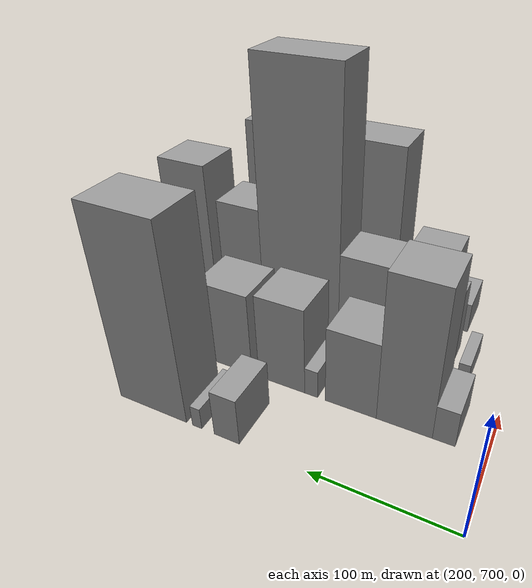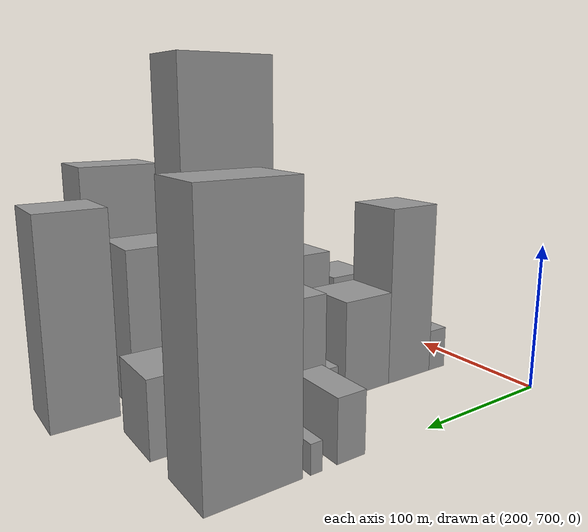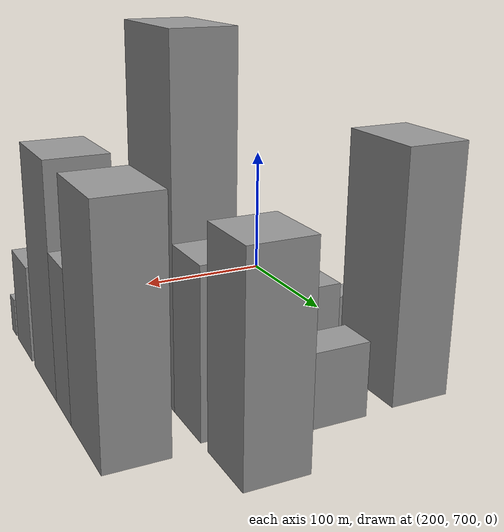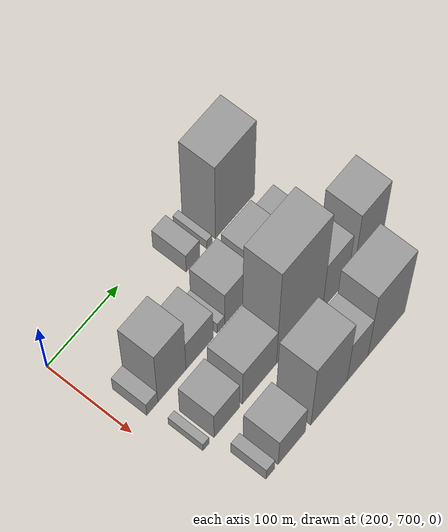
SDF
<sdf version="1.6">
 <world name="default">
  <model name="building_161">
   <static>1</static>
   <pose>220.0000 859.9335 0 0.000000 0.000000 0.000000</pose>
   <link name="link">
    <pose>0 0 19.50 0 0 0</pose>
    <collision name="collision"><geometry><box><size>40.0000 19.8157 39.0000</size></box></geometry></collision>
    <visual name="visual">
     <cast_shadows>0</cast_shadows>
     <geometry><box><size>40.0000 19.8157 39.0000</size></box></geometry>
     <material>
      <script>
       <uri>model://grey_wall/materials/scripts</uri>
       <uri>model://grey_wall/materials/textures</uri>
       <name>vrc/grey_wall</name>
      </script>
     </material>
    </visual>
   </link>
  </model>
  <model name="building_162">
   <static>1</static>
   <pose>220.0000 883.7173 0 0.000000 0.000000 0.000000</pose>
   <link name="link">
    <pose>0 0 9.00 0 0 0</pose>
    <collision name="collision"><geometry><box><size>40.0000 7.7518 18.0000</size></box></geometry></collision>
    <visual name="visual">
     <cast_shadows>0</cast_shadows>
     <geometry><box><size>40.0000 7.7518 18.0000</size></box></geometry>
     <material>
      <script>
       <uri>model://grey_wall/materials/scripts</uri>
       <uri>model://grey_wall/materials/textures</uri>
       <name>vrc/grey_wall</name>
      </script>
     </material>
    </visual>
   </link>
  </model>
  <model name="building_163">
   <static>1</static>
   <pose>220.0000 921.4375 0 0.000000 0.000000 0.000000</pose>
   <link name="link">
    <pose>0 0 79.50 0 0 0</pose>
    <collision name="collision"><geometry><box><size>40.0000 57.6886 159.0000</size></box></geometry></collision>
    <visual name="visual">
     <cast_shadows>0</cast_shadows>
     <geometry><box><size>40.0000 57.6886 159.0000</size></box></geometry>
     <material>
      <script>
       <uri>model://grey_wall/materials/scripts</uri>
       <uri>model://grey_wall/materials/textures</uri>
       <name>vrc/grey_wall</name>
      </script>
     </material>
    </visual>
   </link>
  </model>
  <model name="building_214">
   <static>1</static>
   <pose>280.0000 728.7130 0 0.000000 0.000000 0.000000</pose>
   <link name="link">
    <pose>0 0 15.00 0 0 0</pose>
    <collision name="collision"><geometry><box><size>40.0000 15.5707 30.0000</size></box></geometry></collision>
    <visual name="visual">
     <cast_shadows>0</cast_shadows>
     <geometry><box><size>40.0000 15.5707 30.0000</size></box></geometry>
     <material>
      <script>
       <uri>model://grey_wall/materials/scripts</uri>
       <uri>model://grey_wall/materials/textures</uri>
       <name>vrc/grey_wall</name>
      </script>
     </material>
    </visual>
   </link>
  </model>
  <model name="building_215">
   <static>1</static>
   <pose>280.0000 756.4574 0 0.000000 0.000000 0.000000</pose>
   <link name="link">
    <pose>0 0 61.50 0 0 0</pose>
    <collision name="collision"><geometry><box><size>40.0000 39.9183 123.0000</size></box></geometry></collision>
    <visual name="visual">
     <cast_shadows>0</cast_shadows>
     <geometry><box><size>40.0000 39.9183 123.0000</size></box></geometry>
     <material>
      <script>
       <uri>model://grey_wall/materials/scripts</uri>
       <uri>model://grey_wall/materials/textures</uri>
       <name>vrc/grey_wall</name>
      </script>
     </material>
    </visual>
   </link>
  </model>
  <model name="building_216">
   <static>1</static>
   <pose>280.0000 795.9183 0 0.000000 0.000000 0.000000</pose>
   <link name="link">
    <pose>0 0 33.00 0 0 0</pose>
    <collision name="collision"><geometry><box><size>40.0000 39.0035 66.0000</size></box></geometry></collision>
    <visual name="visual">
     <cast_shadows>0</cast_shadows>
     <geometry><box><size>40.0000 39.0035 66.0000</size></box></geometry>
     <material>
      <script>
       <uri>model://grey_wall/materials/scripts</uri>
       <uri>model://grey_wall/materials/textures</uri>
       <name>vrc/grey_wall</name>
      </script>
     </material>
    </visual>
   </link>
  </model>
  <model name="building_217">
   <static>1</static>
   <pose>280.0000 826.6223 0 0.000000 0.000000 0.000000</pose>
   <link name="link">
    <pose>0 0 12.00 0 0 0</pose>
    <collision name="collision"><geometry><box><size>40.0000 10.4045 24.0000</size></box></geometry></collision>
    <visual name="visual">
     <cast_shadows>0</cast_shadows>
     <geometry><box><size>40.0000 10.4045 24.0000</size></box></geometry>
     <material>
      <script>
       <uri>model://grey_wall/materials/scripts</uri>
       <uri>model://grey_wall/materials/textures</uri>
       <name>vrc/grey_wall</name>
      </script>
     </material>
    </visual>
   </link>
  </model>
  <model name="building_218">
   <static>1</static>
   <pose>280.0000 851.1427 0 0.000000 0.000000 0.000000</pose>
   <link name="link">
    <pose>0 0 37.50 0 0 0</pose>
    <collision name="collision"><geometry><box><size>40.0000 38.6363 75.0000</size></box></geometry></collision>
    <visual name="visual">
     <cast_shadows>0</cast_shadows>
     <geometry><box><size>40.0000 38.6363 75.0000</size></box></geometry>
     <material>
      <script>
       <uri>model://grey_wall/materials/scripts</uri>
       <uri>model://grey_wall/materials/textures</uri>
       <name>vrc/grey_wall</name>
      </script>
     </material>
    </visual>
   </link>
  </model>
  <model name="building_219">
   <static>1</static>
   <pose>280.0000 897.7607 0 0.000000 0.000000 0.000000</pose>
   <link name="link">
    <pose>0 0 36.00 0 0 0</pose>
    <collision name="collision"><geometry><box><size>40.0000 42.5996 72.0000</size></box></geometry></collision>
    <visual name="visual">
     <cast_shadows>0</cast_shadows>
     <geometry><box><size>40.0000 42.5996 72.0000</size></box></geometry>
     <material>
      <script>
       <uri>model://grey_wall/materials/scripts</uri>
       <uri>model://grey_wall/materials/textures</uri>
       <name>vrc/grey_wall</name>
      </script>
     </material>
    </visual>
   </link>
  </model>
  <model name="building_220">
   <static>1</static>
   <pose>280.0000 939.0841 0 0.000000 0.000000 0.000000</pose>
   <link name="link">
    <pose>0 0 24.00 0 0 0</pose>
    <collision name="collision"><geometry><box><size>40.0000 26.0473 48.0000</size></box></geometry></collision>
    <visual name="visual">
     <cast_shadows>0</cast_shadows>
     <geometry><box><size>40.0000 26.0473 48.0000</size></box></geometry>
     <material>
      <script>
       <uri>model://grey_wall/materials/scripts</uri>
       <uri>model://grey_wall/materials/textures</uri>
       <name>vrc/grey_wall</name>
      </script>
     </material>
    </visual>
   </link>
  </model>
  <model name="building_266">
   <static>1</static>
   <pose>340.0000 731.3748 0 0.000000 0.000000 0.000000</pose>
   <link name="link">
    <pose>0 0 9.00 0 0 0</pose>
    <collision name="collision"><geometry><box><size>40.0000 8.7220 18.0000</size></box></geometry></collision>
    <visual name="visual">
     <cast_shadows>0</cast_shadows>
     <geometry><box><size>40.0000 8.7220 18.0000</size></box></geometry>
     <material>
      <script>
       <uri>model://grey_wall/materials/scripts</uri>
       <uri>model://grey_wall/materials/textures</uri>
       <name>vrc/grey_wall</name>
      </script>
     </material>
    </visual>
   </link>
  </model>
  <model name="building_267">
   <static>1</static>
   <pose>340.0000 760.8385 0 0.000000 0.000000 0.000000</pose>
   <link name="link">
    <pose>0 0 31.50 0 0 0</pose>
    <collision name="collision"><geometry><box><size>40.0000 36.2054 63.0000</size></box></geometry></collision>
    <visual name="visual">
     <cast_shadows>0</cast_shadows>
     <geometry><box><size>40.0000 36.2054 63.0000</size></box></geometry>
     <material>
      <script>
       <uri>model://grey_wall/materials/scripts</uri>
       <uri>model://grey_wall/materials/textures</uri>
       <name>vrc/grey_wall</name>
      </script>
     </material>
    </visual>
   </link>
  </model>
  <model name="building_268">
   <static>1</static>
   <pose>340.0000 807.5757 0 0.000000 0.000000 0.000000</pose>
   <link name="link">
    <pose>0 0 42.00 0 0 0</pose>
    <collision name="collision"><geometry><box><size>40.0000 49.2691 84.0000</size></box></geometry></collision>
    <visual name="visual">
     <cast_shadows>0</cast_shadows>
     <geometry><box><size>40.0000 49.2691 84.0000</size></box></geometry>
     <material>
      <script>
       <uri>model://grey_wall/materials/scripts</uri>
       <uri>model://grey_wall/materials/textures</uri>
       <name>vrc/grey_wall</name>
      </script>
     </material>
    </visual>
   </link>
  </model>
  <model name="building_269">
   <static>1</static>
   <pose>340.0000 866.1755 0 0.000000 0.000000 0.000000</pose>
   <link name="link">
    <pose>0 0 111.00 0 0 0</pose>
    <collision name="collision"><geometry><box><size>40.0000 67.9304 222.0000</size></box></geometry></collision>
    <visual name="visual">
     <cast_shadows>0</cast_shadows>
     <geometry><box><size>40.0000 67.9304 222.0000</size></box></geometry>
     <material>
      <script>
       <uri>model://grey_wall/materials/scripts</uri>
       <uri>model://grey_wall/materials/textures</uri>
       <name>vrc/grey_wall</name>
      </script>
     </material>
    </visual>
   </link>
  </model>
  <model name="building_270">
   <static>1</static>
   <pose>340.0000 919.0198 0 0.000000 0.000000 0.000000</pose>
   <link name="link">
    <pose>0 0 52.50 0 0 0</pose>
    <collision name="collision"><geometry><box><size>40.0000 37.7582 105.0000</size></box></geometry></collision>
    <visual name="visual">
     <cast_shadows>0</cast_shadows>
     <geometry><box><size>40.0000 37.7582 105.0000</size></box></geometry>
     <material>
      <script>
       <uri>model://grey_wall/materials/scripts</uri>
       <uri>model://grey_wall/materials/textures</uri>
       <name>vrc/grey_wall</name>
      </script>
     </material>
    </visual>
   </link>
  </model>
  <model name="building_271">
   <static>1</static>
   <pose>340.0000 968.2472 0 0.000000 0.000000 0.000000</pose>
   <link name="link">
    <pose>0 0 66.00 0 0 0</pose>
    <collision name="collision"><geometry><box><size>40.0000 42.6966 132.0000</size></box></geometry></collision>
    <visual name="visual">
     <cast_shadows>0</cast_shadows>
     <geometry><box><size>40.0000 42.6966 132.0000</size></box></geometry>
     <material>
      <script>
       <uri>model://grey_wall/materials/scripts</uri>
       <uri>model://grey_wall/materials/textures</uri>
       <name>vrc/grey_wall</name>
      </script>
     </material>
    </visual>
   </link>
  </model>
  <model name="building_321">
   <static>1</static>
   <pose>400.0000 747.8555 0 0.000000 0.000000 0.000000</pose>
   <link name="link">
    <pose>0 0 13.50 0 0 0</pose>
    <collision name="collision"><geometry><box><size>40.0000 12.1680 27.0000</size></box></geometry></collision>
    <visual name="visual">
     <cast_shadows>0</cast_shadows>
     <geometry><box><size>40.0000 12.1680 27.0000</size></box></geometry>
     <material>
      <script>
       <uri>model://grey_wall/materials/scripts</uri>
       <uri>model://grey_wall/materials/textures</uri>
       <name>vrc/grey_wall</name>
      </script>
     </material>
    </visual>
   </link>
  </model>
  <model name="building_322">
   <static>1</static>
   <pose>400.0000 778.5516 0 0.000000 0.000000 0.000000</pose>
   <link name="link">
    <pose>0 0 33.00 0 0 0</pose>
    <collision name="collision"><geometry><box><size>40.0000 39.2241 66.0000</size></box></geometry></collision>
    <visual name="visual">
     <cast_shadows>0</cast_shadows>
     <geometry><box><size>40.0000 39.2241 66.0000</size></box></geometry>
     <material>
      <script>
       <uri>model://grey_wall/materials/scripts</uri>
       <uri>model://grey_wall/materials/textures</uri>
       <name>vrc/grey_wall</name>
      </script>
     </material>
    </visual>
   </link>
  </model>
  <model name="building_323">
   <static>1</static>
   <pose>400.0000 832.5583 0 0.000000 0.000000 0.000000</pose>
   <link name="link">
    <pose>0 0 75.00 0 0 0</pose>
    <collision name="collision"><geometry><box><size>40.0000 52.7893 150.0000</size></box></geometry></collision>
    <visual name="visual">
     <cast_shadows>0</cast_shadows>
     <geometry><box><size>40.0000 52.7893 150.0000</size></box></geometry>
     <material>
      <script>
       <uri>model://grey_wall/materials/scripts</uri>
       <uri>model://grey_wall/materials/textures</uri>
       <name>vrc/grey_wall</name>
      </script>
     </material>
    </visual>
   </link>
  </model>
  <model name="building_324">
   <static>1</static>
   <pose>400.0000 874.3813 0 0.000000 0.000000 0.000000</pose>
   <link name="link">
    <pose>0 0 48.00 0 0 0</pose>
    <collision name="collision"><geometry><box><size>40.0000 30.8568 96.0000</size></box></geometry></collision>
    <visual name="visual">
     <cast_shadows>0</cast_shadows>
     <geometry><box><size>40.0000 30.8568 96.0000</size></box></geometry>
     <material>
      <script>
       <uri>model://grey_wall/materials/scripts</uri>
       <uri>model://grey_wall/materials/textures</uri>
       <name>vrc/grey_wall</name>
      </script>
     </material>
    </visual>
   </link>
  </model>
  <model name="building_325">
   <static>1</static>
   <pose>400.0000 917.3525 0 0.000000 0.000000 0.000000</pose>
   <link name="link">
    <pose>0 0 75.00 0 0 0</pose>
    <collision name="collision"><geometry><box><size>40.0000 55.0856 150.0000</size></box></geometry></collision>
    <visual name="visual">
     <cast_shadows>0</cast_shadows>
     <geometry><box><size>40.0000 55.0856 150.0000</size></box></geometry>
     <material>
      <script>
       <uri>model://grey_wall/materials/scripts</uri>
       <uri>model://grey_wall/materials/textures</uri>
       <name>vrc/grey_wall</name>
      </script>
     </material>
    </visual>
   </link>
  </model>
 </world>
</sdf>
